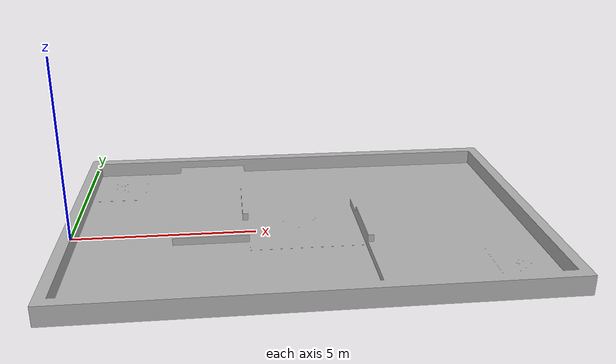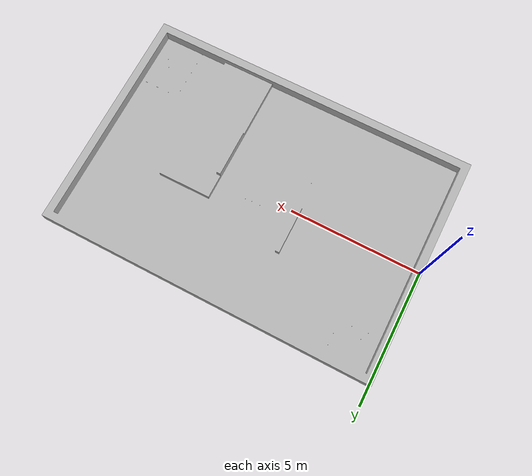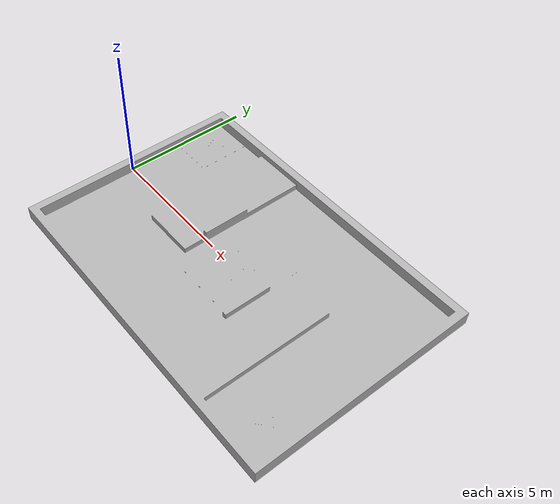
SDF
<?xml version='1.0' encoding='utf-8'?>
<sdf version='1.7'>
  <world name='default'>
    <!-- Physics -->
    <plugin filename="gz-sim-physics-system" name="gz::sim::systems::Physics">
    </plugin>

    <!-- Forwards simulation state to the GUI -->
    <plugin filename="gz-sim-scene-broadcaster-system" name="gz::sim::systems::SceneBroadcaster">
    </plugin>

    <!-- Processes user commands, like translate and create -->
    <plugin filename="gz-sim-user-commands-system" name="gz::sim::systems::UserCommands">
    </plugin>

    <!-- Generates rendering sensor data -->
    <plugin filename="gz-sim-sensors-system" name="gz::sim::systems::Sensors">
      <render_engine>ogre2</render_engine>
    </plugin>

    <plugin filename="gz-sim-imu-system" name="gz::sim::systems::Imu">
    </plugin>

    <light type='directional' name='direct_light'>
      <visualize>false</visualize>
      <cast_shadows>false</cast_shadows>
      <pose>7.4 3.6 10 0 0 0</pose>
      <diffuse>1.0 1.0 1.0 1</diffuse>
      <specular>0.5 0.5 0.5 1</specular>
      <attenuation>
        <range>1000</range>
        <constant>0.9</constant>
        <linear>0.01</linear>
        <quadratic>0.001</quadratic>
      </attenuation>
      <direction>0 0 -1</direction>
    </light>

    <model name='rmul_2026'>
      <include>
        <uri>model://rmul_2026</uri>
      </include>
      <pose>0.0 0.0 0 0 0 0</pose>
      <static>true</static>
    </model>
  </world>
</sdf>

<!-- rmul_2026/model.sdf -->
<sdf version='1.6'>
  <model name='rmul_2026'>
    <static>true</static>
    <link name='body'>
      <!-- If your mesh origin/height differs, adjust this pose -->
      <pose frame=''>0 0 0.2 0 0 0</pose>
      <self_collide>0</self_collide>
      <kinematic>0</kinematic>
      <gravity>1</gravity>
      <visual name='visual'>
        <geometry>
          <mesh>
            <uri>model://rmul_2026/meshes/rmul_2026.stl</uri>
            <scale>1 1 1</scale>
          </mesh>
        </geometry>
        <!-- STL 本身不带颜色/材质，这里显式指定渲染材质 -->
        <material>
          <ambient>0.4 0.4 0.4 1</ambient>
          <diffuse>0.7 0.7 0.7 1</diffuse>
          <specular>0.05 0.05 0.05 1</specular>
        </material>
      </visual>
      <collision name='collision'>
        <geometry>
          <mesh>
            <uri>model://rmul_2026/meshes/rmul_2026.stl</uri>
            <scale>1 1 1</scale>
          </mesh>
        </geometry>
      </collision>
    </link>
  </model>
</sdf>
